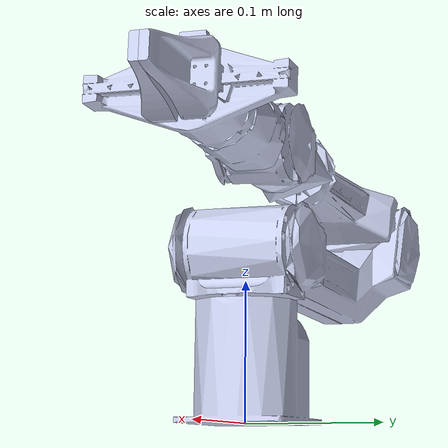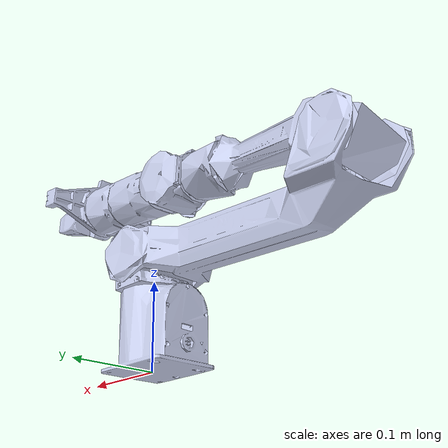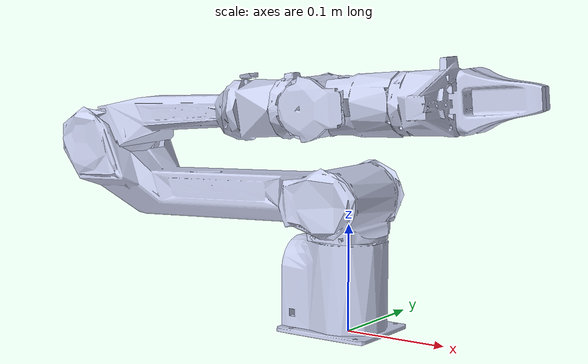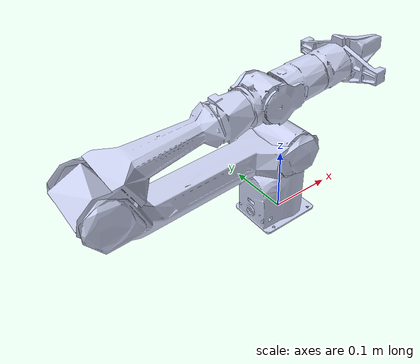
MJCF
<mujoco model="piper_real">
  <!-- No meshdir: robot mesh files carry the "meshes/" prefix, so a scene that includes this
       file can also reference sibling assets (e.g. ../piper/assets/*.obj) without a meshdir clash. -->
  <compiler angle="radian"/>
  <option integrator="implicitfast" cone="elliptic" impratio="10"/>

  <default>
    <default class="piper">
      <joint frictionloss="0.2" armature="0.01"/>
      <default class="finger">
        <joint frictionloss="0" armature="0.005"/>
      </default>
    </default>
  </default>

  <asset>
    <mesh name="base_link" content_type="model/stl" file="meshes/base_link.STL"/>
    <mesh name="link1" content_type="model/stl" file="meshes/link1.STL"/>
    <mesh name="link2" content_type="model/stl" file="meshes/link2.STL"/>
    <mesh name="link3" content_type="model/stl" file="meshes/link3.STL"/>
    <mesh name="link4" content_type="model/stl" file="meshes/link4.STL"/>
    <mesh name="link5" content_type="model/stl" file="meshes/link5.STL"/>
    <mesh name="link6" content_type="model/stl" file="meshes/link6.STL"/>
    <mesh name="gripper_base" content_type="model/stl" file="meshes/gripper_base.STL"/>
    <mesh name="link7" content_type="model/stl" file="meshes/link7.STL"/>
    <mesh name="link8" content_type="model/stl" file="meshes/link8.STL"/>
  </asset>

  <worldbody>
    <body name="base_link" pos="0 0 0" gravcomp="1">
      <geom type="mesh" contype="0" conaffinity="0" group="1" density="0" rgba="0.792157 0.819608 0.933333 1" mesh="base_link"/>
      <geom type="mesh" group="3" rgba="0.792157 0.819608 0.933333 1" mesh="base_link" contype="2" conaffinity="2"/>
      <body name="link1" pos="0 0 0.123" childclass="piper" gravcomp="1">
      <inertial pos="0.000121505 0.000104632 -0.00438597" quat="0.682111 0.730899 0.0143111 -0.0175062" mass="0.71" diaginertia="0.000489262 0.000439887 0.000404551"/>
      <joint name="joint1" pos="0 0 0" axis="0 0 1" range="-2.618 2.168" actuatorfrcrange="-100 100"/>
      <geom type="mesh" contype="0" conaffinity="0" group="1" density="0" rgba="0.792157 0.819608 0.933333 1" mesh="link1"/>
      <geom type="mesh" group="3" rgba="0.792157 0.819608 0.933333 1" mesh="link1" contype="2" conaffinity="2"/>
      <body name="link2" quat="0.0480084 -0.0480134 -0.705476 -0.705474" gravcomp="1">
        <inertial pos="0.198666 -0.0109269 0.00142122" quat="0.510131 0.475585 0.525075 0.48773" mass="1.17" diaginertia="0.0679032 0.067745 0.00111966"/>
        <joint name="joint2" pos="0 0 0" axis="0 0 1" range="0 3.14" actuatorfrcrange="-100 100"/>
        <geom type="mesh" contype="0" conaffinity="0" group="1" density="0" rgba="0.792157 0.819608 0.933333 1" mesh="link2"/>
        <geom type="mesh" group="3" rgba="0.792157 0.819608 0.933333 1" mesh="link2" contype="2" conaffinity="2"/>
        <body name="link3" pos="0.28503 0 0" quat="0.623996 0 0 -0.781427" gravcomp="1">
          <inertial pos="-0.0202738 -0.133915 -0.000458683" quat="0.706282 0.705111 0.0532202 0.0339395" mass="0.5" diaginertia="0.0138227 0.0138032 0.000244685"/>
          <joint name="joint3" pos="0 0 0" axis="0 0 1" range="-2.967 0" actuatorfrcrange="-100 100"/>
          <geom type="mesh" contype="0" conaffinity="0" group="1" density="0" rgba="0.792157 0.819608 0.933333 1" mesh="link3"/>
          <geom type="mesh" group="3" rgba="0.792157 0.819608 0.933333 1" mesh="link3" contype="2" conaffinity="2"/>
          <body name="link4" pos="-0.021984 -0.25075 0" quat="0.707105 0.707108 0 0" gravcomp="1">
            <inertial pos="-9.66636e-05 0.000876064 -0.00496881" quat="0.714689 -0.0948484 0.0635223 0.690064" mass="0.38" diaginertia="0.000191586 0.000185052 0.000152863"/>
            <joint name="joint4" pos="0 0 0" axis="0 0 1" range="-1.745 1.745" actuatorfrcrange="-100 100"/>
            <geom type="mesh" contype="0" conaffinity="0" group="1" density="0" rgba="0.792157 0.819608 0.933333 1" mesh="link4"/>
            <geom type="mesh" group="3" rgba="0.792157 0.819608 0.933333 1" mesh="link4" contype="2" conaffinity="2"/>
            <body name="link5" quat="0.707105 -0.707108 0 0" gravcomp="1">
              <inertial pos="-4.10554e-05 -0.0566487 -0.00372058" quat="0.709589 0.704614 0.00134613 -0.00132656" mass="0.383" diaginertia="0.00166169 0.00164328 0.000185028"/>
              <joint name="joint5" pos="0 0 0" axis="0 0 1" range="-1.22 1.22" actuatorfrcrange="-100 100"/>
              <geom type="mesh" contype="0" conaffinity="0" group="1" density="0" rgba="0.792157 0.819608 0.933333 1" mesh="link5"/>
              <geom type="mesh" group="3" rgba="0.792157 0.819608 0.933333 1" mesh="link5" contype="2" conaffinity="2"/>
              <body name="link6" pos="8.8259e-05 -0.091 0" quat="0.707105 0.707108 0 0" gravcomp="1">
                <inertial pos="-0.000182344 7.9409e-05 0.0316207" quat="0.999977 6.30204e-05 0.00678001 0.000789387" mass="0.457" diaginertia="0.000938049 0.000723078 0.000395388"/>
                <joint name="joint6" pos="0 0 0" axis="0 0 1" range="-2.0944 2.0944" actuatorfrcrange="-100 100"/>
                <geom type="mesh" contype="0" conaffinity="0" group="1" density="0" rgba="0.898039 0.917647 0.929412 1" mesh="link6"/>
                <geom type="mesh" group="3" rgba="0.898039 0.917647 0.929412 1" mesh="link6" contype="2" conaffinity="2"/>
                <geom type="mesh" contype="0" conaffinity="0" group="1" density="0" rgba="0.792157 0.819608 0.933333 1" mesh="gripper_base"/>
                <geom type="mesh" group="3" rgba="0.792157 0.819608 0.933333 1" mesh="gripper_base" contype="2" conaffinity="2"/>
                <camera name="wrist_cam" pos="-0.08 0 -0.10" xyaxes="0 -1 0 -0.980 0 0.200" fovy="58"/>
                <site name="tcp" pos="0 0 0.10" size="0.006" rgba="1 0 0 1"/>
                <body name="link7" pos="0 0 0.1358" quat="0.707105 0.707108 0 0" gravcomp="1">
                  <inertial pos="0.000651232 -0.049193 0.00972259" quat="0.477798 0.572974 -0.518028 0.418398" mass="0.025" diaginertia="7.74531e-05 7.36783e-05 5.0886e-06"/>
                  <joint name="joint7" pos="0 0 0" axis="0 0 1" type="slide" range="0 0.035" actuatorfrcrange="-10 10" class="finger"/>
                  <geom type="mesh" contype="0" conaffinity="0" group="1" density="0" rgba="0.792157 0.819608 0.933333 1" mesh="link7"/>
                  <geom type="mesh" group="3" rgba="0.792157 0.819608 0.933333 1" mesh="link7" friction="2 0.1 0.01"/>
                </body>
                <body name="link8" pos="0 0 0.1358" quat="-2.59734e-06 -2.59735e-06 -0.707108 -0.707105" gravcomp="1">
                  <inertial pos="0.000651232 -0.049193 0.00972259" quat="0.477798 0.572974 -0.518028 0.418398" mass="0.025" diaginertia="7.74531e-05 7.36783e-05 5.0886e-06"/>
                  <joint name="joint8" pos="0 0 0" axis="0 0 -1" type="slide" range="-0.035 0" actuatorfrcrange="-10 10" class="finger"/>
                  <geom type="mesh" contype="0" conaffinity="0" group="1" density="0" rgba="0.792157 0.819608 0.933333 1" mesh="link8"/>
                  <geom type="mesh" group="3" rgba="0.792157 0.819608 0.933333 1" mesh="link8" friction="2 0.1 0.01"/>
                </body>
              </body>
            </body>
          </body>
        </body>
      </body>
      </body>
    </body>
  </worldbody>

  <contact>
    <!-- adjacent links interpenetrate at their shared joint; exclude to avoid solver churn.
         base_link<->link1 in particular jams joint1 (base yaw) if not excluded. -->
    <exclude body1="base_link" body2="link1"/>
    <exclude body1="link1" body2="link2"/>
    <exclude body1="link2" body2="link3"/>
    <exclude body1="link3" body2="link4"/>
    <exclude body1="link4" body2="link5"/>
    <exclude body1="link5" body2="link6"/>
    <exclude body1="link6" body2="link7"/>
    <exclude body1="link6" body2="link8"/>
    <exclude body1="link7" body2="link8"/>
  </contact>

  <equality>
    <joint joint1="joint8" joint2="joint7" polycoef="0 -1 0 0 0"/>
  </equality>

  <actuator>
    <position name="joint1" joint="joint1" class="piper" kp="120" kv="12"/>
    <position name="joint2" joint="joint2" class="piper" kp="120" kv="12"/>
    <position name="joint3" joint="joint3" class="piper" kp="120" kv="12"/>
    <position name="joint4" joint="joint4" class="piper" kp="60" kv="6"/>
    <position name="joint5" joint="joint5" class="piper" kp="30" kv="3"/>
    <position name="joint6" joint="joint6" class="piper" kp="20" kv="2"/>
    <position name="gripper" joint="joint7" class="finger" kp="60" kv="4"/>
  </actuator>

  <keyframe>
    <!-- ready pose: arm raised over the table, gripper open -->
    <key name="home" qpos="0 1.2 -1.2 0 0.6 0 0 0" ctrl="0 1.2 -1.2 0 0.6 0 0.035"/>
  </keyframe>
</mujoco>
